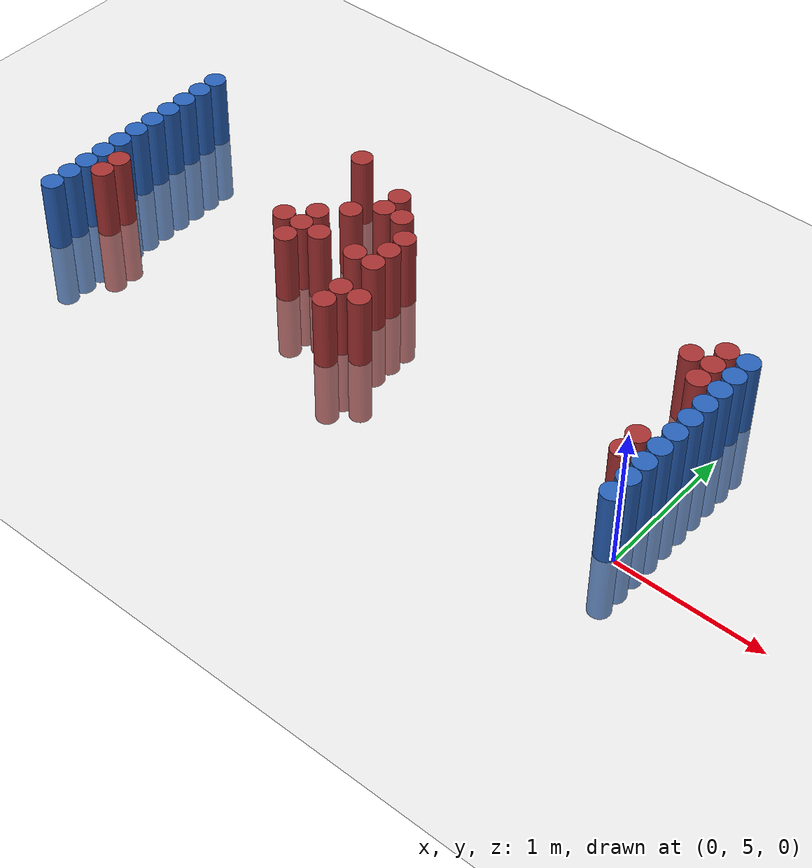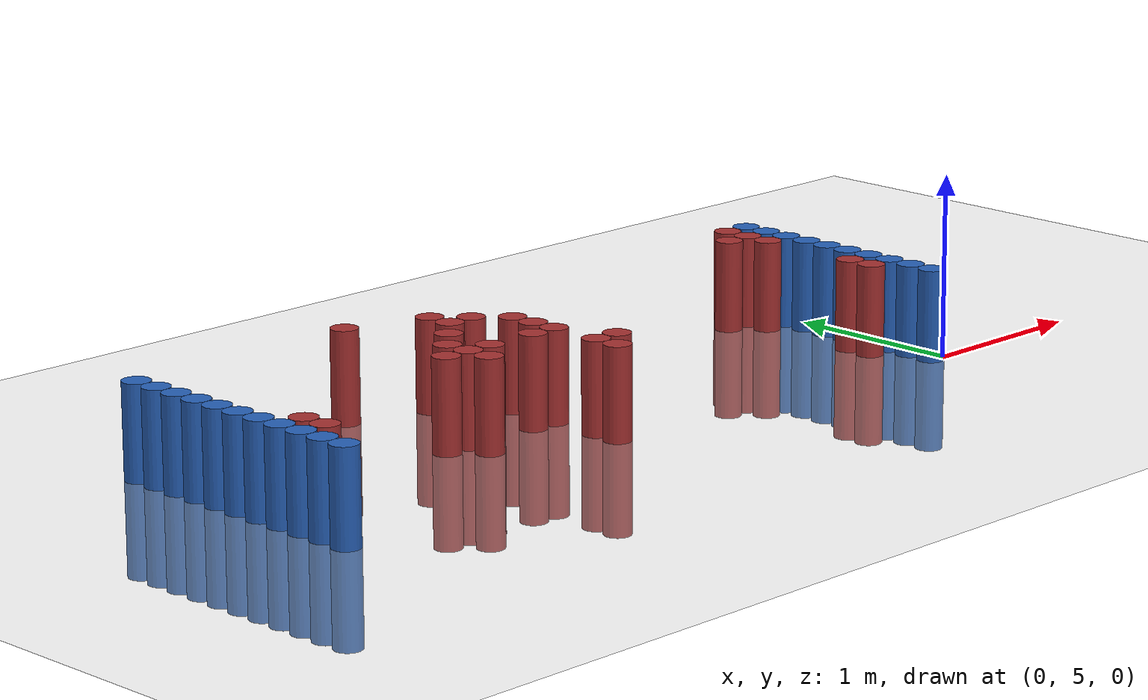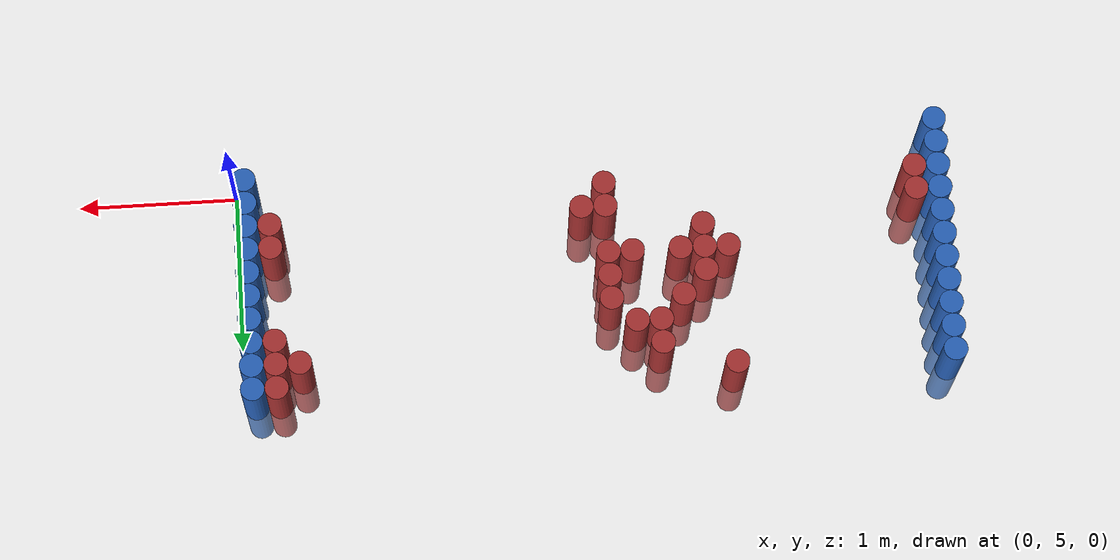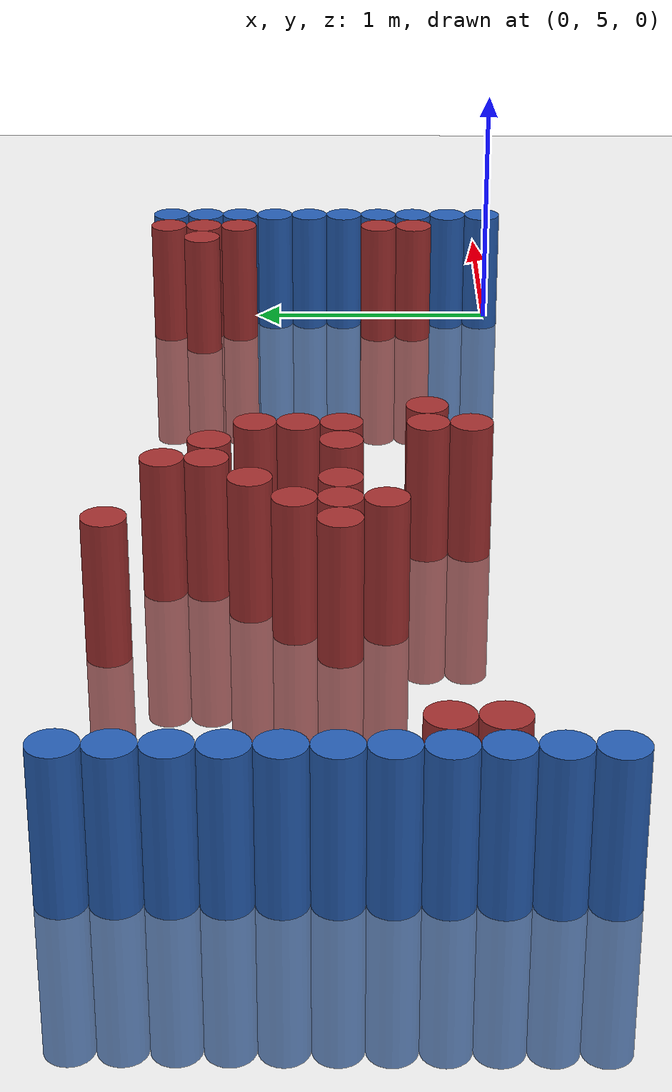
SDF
<sdf version="1.6">
 <world name="default">
  <model name="ground_plane">
   <static>1</static>
   <link name="link">
    <collision name="collision">
     <geometry><plane><normal>0 0 1</normal><size>100 100</size></plane></geometry>
     <surface><friction><ode><mu>100</mu><mu2>50</mu2></ode></friction></surface>
    </collision>
    <visual name="visual">
     <cast_shadows>0</cast_shadows>
     <geometry><plane><normal>0 0 1</normal><size>100 100</size></plane></geometry>
     <material>
      <script><uri>file://media/materials/scripts/gazebo.material</uri><name>Gazebo/Grey</name></script>
     </material>
    </visual>
   </link>
  </model>
  <model name="unit_cylinder_93">
   <static>1</static>
   <pose>-4.425000 4.875000 0.000000 0.000000 0.000000 0.000000</pose>
   <link name="link">
    <inertial>
     <mass>1</mass>
     <inertia><ixx>0.145833</ixx><ixy>0</ixy><ixz>0</ixz><iyy>0.145833</iyy><iyz>0</iyz><izz>0.125</izz></inertia>
    </inertial>
    <collision name="collision">
     <geometry><cylinder><radius>0.075000</radius><length>1</length></cylinder></geometry>
    </collision>
    <visual name="visual">
     <geometry><cylinder><radius>0.075000</radius><length>1</length></cylinder></geometry>
     <material>
      <ambient>0.152000 0.379000 0.720000 1</ambient>
      <diffuse>0.152000 0.379000 0.720000 1</diffuse>
     </material>
     <material>
      <script><name>Gazebo/Grey</name><uri>file://media/materials/scripts/gazebo.material</uri></script>
     </material>
    </visual>
   </link>
  </model>
  <model name="unit_cylinder_94">
   <static>1</static>
   <pose>-0.075000 5.025000 0.000000 0.000000 0.000000 0.000000</pose>
   <link name="link">
    <inertial>
     <mass>1</mass>
     <inertia><ixx>0.145833</ixx><ixy>0</ixy><ixz>0</ixz><iyy>0.145833</iyy><iyz>0</iyz><izz>0.125</izz></inertia>
    </inertial>
    <collision name="collision">
     <geometry><cylinder><radius>0.075000</radius><length>1</length></cylinder></geometry>
    </collision>
    <visual name="visual">
     <geometry><cylinder><radius>0.075000</radius><length>1</length></cylinder></geometry>
     <material>
      <ambient>0.152000 0.379000 0.720000 1</ambient>
      <diffuse>0.152000 0.379000 0.720000 1</diffuse>
     </material>
     <material>
      <script><name>Gazebo/Grey</name><uri>file://media/materials/scripts/gazebo.material</uri></script>
     </material>
    </visual>
   </link>
  </model>
  <model name="unit_cylinder_95">
   <static>1</static>
   <pose>-4.425000 5.025000 0.000000 0.000000 0.000000 0.000000</pose>
   <link name="link">
    <inertial>
     <mass>1</mass>
     <inertia><ixx>0.145833</ixx><ixy>0</ixy><ixz>0</ixz><iyy>0.145833</iyy><iyz>0</iyz><izz>0.125</izz></inertia>
    </inertial>
    <collision name="collision">
     <geometry><cylinder><radius>0.075000</radius><length>1</length></cylinder></geometry>
    </collision>
    <visual name="visual">
     <geometry><cylinder><radius>0.075000</radius><length>1</length></cylinder></geometry>
     <material>
      <ambient>0.152000 0.379000 0.720000 1</ambient>
      <diffuse>0.152000 0.379000 0.720000 1</diffuse>
     </material>
     <material>
      <script><name>Gazebo/Grey</name><uri>file://media/materials/scripts/gazebo.material</uri></script>
     </material>
    </visual>
   </link>
  </model>
  <model name="unit_cylinder_96">
   <static>1</static>
   <pose>-4.425000 5.175000 0.000000 0.000000 0.000000 0.000000</pose>
   <link name="link">
    <inertial>
     <mass>1</mass>
     <inertia><ixx>0.145833</ixx><ixy>0</ixy><ixz>0</ixz><iyy>0.145833</iyy><iyz>0</iyz><izz>0.125</izz></inertia>
    </inertial>
    <collision name="collision">
     <geometry><cylinder><radius>0.075000</radius><length>1</length></cylinder></geometry>
    </collision>
    <visual name="visual">
     <geometry><cylinder><radius>0.075000</radius><length>1</length></cylinder></geometry>
     <material>
      <ambient>0.152000 0.379000 0.720000 1</ambient>
      <diffuse>0.152000 0.379000 0.720000 1</diffuse>
     </material>
     <material>
      <script><name>Gazebo/Grey</name><uri>file://media/materials/scripts/gazebo.material</uri></script>
     </material>
    </visual>
   </link>
  </model>
  <model name="unit_cylinder_97">
   <static>1</static>
   <pose>-4.425000 5.325000 0.000000 0.000000 0.000000 0.000000</pose>
   <link name="link">
    <inertial>
     <mass>1</mass>
     <inertia><ixx>0.145833</ixx><ixy>0</ixy><ixz>0</ixz><iyy>0.145833</iyy><iyz>0</iyz><izz>0.125</izz></inertia>
    </inertial>
    <collision name="collision">
     <geometry><cylinder><radius>0.075000</radius><length>1</length></cylinder></geometry>
    </collision>
    <visual name="visual">
     <geometry><cylinder><radius>0.075000</radius><length>1</length></cylinder></geometry>
     <material>
      <ambient>0.152000 0.379000 0.720000 1</ambient>
      <diffuse>0.152000 0.379000 0.720000 1</diffuse>
     </material>
     <material>
      <script><name>Gazebo/Grey</name><uri>file://media/materials/scripts/gazebo.material</uri></script>
     </material>
    </visual>
   </link>
  </model>
  <model name="unit_cylinder_98">
   <static>1</static>
   <pose>-4.425000 5.475000 0.000000 0.000000 0.000000 0.000000</pose>
   <link name="link">
    <inertial>
     <mass>1</mass>
     <inertia><ixx>0.145833</ixx><ixy>0</ixy><ixz>0</ixz><iyy>0.145833</iyy><iyz>0</iyz><izz>0.125</izz></inertia>
    </inertial>
    <collision name="collision">
     <geometry><cylinder><radius>0.075000</radius><length>1</length></cylinder></geometry>
    </collision>
    <visual name="visual">
     <geometry><cylinder><radius>0.075000</radius><length>1</length></cylinder></geometry>
     <material>
      <ambient>0.152000 0.379000 0.720000 1</ambient>
      <diffuse>0.152000 0.379000 0.720000 1</diffuse>
     </material>
     <material>
      <script><name>Gazebo/Grey</name><uri>file://media/materials/scripts/gazebo.material</uri></script>
     </material>
    </visual>
   </link>
  </model>
  <model name="unit_cylinder_99">
   <static>1</static>
   <pose>-4.425000 5.625000 0.000000 0.000000 0.000000 0.000000</pose>
   <link name="link">
    <inertial>
     <mass>1</mass>
     <inertia><ixx>0.145833</ixx><ixy>0</ixy><ixz>0</ixz><iyy>0.145833</iyy><iyz>0</iyz><izz>0.125</izz></inertia>
    </inertial>
    <collision name="collision">
     <geometry><cylinder><radius>0.075000</radius><length>1</length></cylinder></geometry>
    </collision>
    <visual name="visual">
     <geometry><cylinder><radius>0.075000</radius><length>1</length></cylinder></geometry>
     <material>
      <ambient>0.152000 0.379000 0.720000 1</ambient>
      <diffuse>0.152000 0.379000 0.720000 1</diffuse>
     </material>
     <material>
      <script><name>Gazebo/Grey</name><uri>file://media/materials/scripts/gazebo.material</uri></script>
     </material>
    </visual>
   </link>
  </model>
  <model name="unit_cylinder_100">
   <static>1</static>
   <pose>-4.425000 5.775000 0.000000 0.000000 0.000000 0.000000</pose>
   <link name="link">
    <inertial>
     <mass>1</mass>
     <inertia><ixx>0.145833</ixx><ixy>0</ixy><ixz>0</ixz><iyy>0.145833</iyy><iyz>0</iyz><izz>0.125</izz></inertia>
    </inertial>
    <collision name="collision">
     <geometry><cylinder><radius>0.075000</radius><length>1</length></cylinder></geometry>
    </collision>
    <visual name="visual">
     <geometry><cylinder><radius>0.075000</radius><length>1</length></cylinder></geometry>
     <material>
      <ambient>0.152000 0.379000 0.720000 1</ambient>
      <diffuse>0.152000 0.379000 0.720000 1</diffuse>
     </material>
     <material>
      <script><name>Gazebo/Grey</name><uri>file://media/materials/scripts/gazebo.material</uri></script>
     </material>
    </visual>
   </link>
  </model>
  <model name="unit_cylinder_101">
   <static>1</static>
   <pose>-4.425000 5.925000 0.000000 0.000000 0.000000 0.000000</pose>
   <link name="link">
    <inertial>
     <mass>1</mass>
     <inertia><ixx>0.145833</ixx><ixy>0</ixy><ixz>0</ixz><iyy>0.145833</iyy><iyz>0</iyz><izz>0.125</izz></inertia>
    </inertial>
    <collision name="collision">
     <geometry><cylinder><radius>0.075000</radius><length>1</length></cylinder></geometry>
    </collision>
    <visual name="visual">
     <geometry><cylinder><radius>0.075000</radius><length>1</length></cylinder></geometry>
     <material>
      <ambient>0.152000 0.379000 0.720000 1</ambient>
      <diffuse>0.152000 0.379000 0.720000 1</diffuse>
     </material>
     <material>
      <script><name>Gazebo/Grey</name><uri>file://media/materials/scripts/gazebo.material</uri></script>
     </material>
    </visual>
   </link>
  </model>
  <model name="unit_cylinder_102">
   <static>1</static>
   <pose>-4.425000 6.075000 0.000000 0.000000 0.000000 0.000000</pose>
   <link name="link">
    <inertial>
     <mass>1</mass>
     <inertia><ixx>0.145833</ixx><ixy>0</ixy><ixz>0</ixz><iyy>0.145833</iyy><iyz>0</iyz><izz>0.125</izz></inertia>
    </inertial>
    <collision name="collision">
     <geometry><cylinder><radius>0.075000</radius><length>1</length></cylinder></geometry>
    </collision>
    <visual name="visual">
     <geometry><cylinder><radius>0.075000</radius><length>1</length></cylinder></geometry>
     <material>
      <ambient>0.152000 0.379000 0.720000 1</ambient>
      <diffuse>0.152000 0.379000 0.720000 1</diffuse>
     </material>
     <material>
      <script><name>Gazebo/Grey</name><uri>file://media/materials/scripts/gazebo.material</uri></script>
     </material>
    </visual>
   </link>
  </model>
  <model name="unit_cylinder_103">
   <static>1</static>
   <pose>-4.425000 6.225000 0.000000 0.000000 0.000000 0.000000</pose>
   <link name="link">
    <inertial>
     <mass>1</mass>
     <inertia><ixx>0.145833</ixx><ixy>0</ixy><ixz>0</ixz><iyy>0.145833</iyy><iyz>0</iyz><izz>0.125</izz></inertia>
    </inertial>
    <collision name="collision">
     <geometry><cylinder><radius>0.075000</radius><length>1</length></cylinder></geometry>
    </collision>
    <visual name="visual">
     <geometry><cylinder><radius>0.075000</radius><length>1</length></cylinder></geometry>
     <material>
      <ambient>0.152000 0.379000 0.720000 1</ambient>
      <diffuse>0.152000 0.379000 0.720000 1</diffuse>
     </material>
     <material>
      <script><name>Gazebo/Grey</name><uri>file://media/materials/scripts/gazebo.material</uri></script>
     </material>
    </visual>
   </link>
  </model>
  <model name="unit_cylinder_104">
   <static>1</static>
   <pose>-4.425000 6.375000 0.000000 0.000000 0.000000 0.000000</pose>
   <link name="link">
    <inertial>
     <mass>1</mass>
     <inertia><ixx>0.145833</ixx><ixy>0</ixy><ixz>0</ixz><iyy>0.145833</iyy><iyz>0</iyz><izz>0.125</izz></inertia>
    </inertial>
    <collision name="collision">
     <geometry><cylinder><radius>0.075000</radius><length>1</length></cylinder></geometry>
    </collision>
    <visual name="visual">
     <geometry><cylinder><radius>0.075000</radius><length>1</length></cylinder></geometry>
     <material>
      <ambient>0.152000 0.379000 0.720000 1</ambient>
      <diffuse>0.152000 0.379000 0.720000 1</diffuse>
     </material>
     <material>
      <script><name>Gazebo/Grey</name><uri>file://media/materials/scripts/gazebo.material</uri></script>
     </material>
    </visual>
   </link>
  </model>
  <model name="unit_cylinder_126">
   <static>1</static>
   <pose>-4.275000 5.175000 0.000000 0.000000 0.000000 0.000000</pose>
   <link name="link">
    <inertial>
     <mass>1</mass>
     <inertia><ixx>0.145833</ixx><ixy>0</ixy><ixz>0</ixz><iyy>0.145833</iyy><iyz>0</iyz><izz>0.125</izz></inertia>
    </inertial>
    <collision name="collision">
     <geometry><cylinder><radius>0.075000</radius><length>1</length></cylinder></geometry>
    </collision>
    <visual name="visual">
     <geometry><cylinder><radius>0.075000</radius><length>1</length></cylinder></geometry>
     <material>
      <ambient>0.648000 0.192000 0.192000 1</ambient>
      <diffuse>0.648000 0.192000 0.192000 1</diffuse>
     </material>
     <material>
      <script><name>Gazebo/Grey</name><uri>file://media/materials/scripts/gazebo.material</uri></script>
     </material>
    </visual>
   </link>
  </model>
  <model name="unit_cylinder_127">
   <static>1</static>
   <pose>-4.275000 5.325000 0.000000 0.000000 0.000000 0.000000</pose>
   <link name="link">
    <inertial>
     <mass>1</mass>
     <inertia><ixx>0.145833</ixx><ixy>0</ixy><ixz>0</ixz><iyy>0.145833</iyy><iyz>0</iyz><izz>0.125</izz></inertia>
    </inertial>
    <collision name="collision">
     <geometry><cylinder><radius>0.075000</radius><length>1</length></cylinder></geometry>
    </collision>
    <visual name="visual">
     <geometry><cylinder><radius>0.075000</radius><length>1</length></cylinder></geometry>
     <material>
      <ambient>0.648000 0.192000 0.192000 1</ambient>
      <diffuse>0.648000 0.192000 0.192000 1</diffuse>
     </material>
     <material>
      <script><name>Gazebo/Grey</name><uri>file://media/materials/scripts/gazebo.material</uri></script>
     </material>
    </visual>
   </link>
  </model>
  <model name="unit_cylinder_149">
   <static>1</static>
   <pose>-3.075000 5.625000 0.000000 0.000000 0.000000 0.000000</pose>
   <link name="link">
    <inertial>
     <mass>1</mass>
     <inertia><ixx>0.145833</ixx><ixy>0</ixy><ixz>0</ixz><iyy>0.145833</iyy><iyz>0</iyz><izz>0.125</izz></inertia>
    </inertial>
    <collision name="collision">
     <geometry><cylinder><radius>0.075000</radius><length>1</length></cylinder></geometry>
    </collision>
    <visual name="visual">
     <geometry><cylinder><radius>0.075000</radius><length>1</length></cylinder></geometry>
     <material>
      <ambient>0.648000 0.192000 0.192000 1</ambient>
      <diffuse>0.648000 0.192000 0.192000 1</diffuse>
     </material>
     <material>
      <script><name>Gazebo/Grey</name><uri>file://media/materials/scripts/gazebo.material</uri></script>
     </material>
    </visual>
   </link>
  </model>
  <model name="unit_cylinder_150">
   <static>1</static>
   <pose>-3.075000 6.375000 0.000000 0.000000 0.000000 0.000000</pose>
   <link name="link">
    <inertial>
     <mass>1</mass>
     <inertia><ixx>0.145833</ixx><ixy>0</ixy><ixz>0</ixz><iyy>0.145833</iyy><iyz>0</iyz><izz>0.125</izz></inertia>
    </inertial>
    <collision name="collision">
     <geometry><cylinder><radius>0.075000</radius><length>1</length></cylinder></geometry>
    </collision>
    <visual name="visual">
     <geometry><cylinder><radius>0.075000</radius><length>1</length></cylinder></geometry>
     <material>
      <ambient>0.648000 0.192000 0.192000 1</ambient>
      <diffuse>0.648000 0.192000 0.192000 1</diffuse>
     </material>
     <material>
      <script><name>Gazebo/Grey</name><uri>file://media/materials/scripts/gazebo.material</uri></script>
     </material>
    </visual>
   </link>
  </model>
  <model name="unit_cylinder_152">
   <static>1</static>
   <pose>-2.925000 5.475000 0.000000 0.000000 0.000000 0.000000</pose>
   <link name="link">
    <inertial>
     <mass>1</mass>
     <inertia><ixx>0.145833</ixx><ixy>0</ixy><ixz>0</ixz><iyy>0.145833</iyy><iyz>0</iyz><izz>0.125</izz></inertia>
    </inertial>
    <collision name="collision">
     <geometry><cylinder><radius>0.075000</radius><length>1</length></cylinder></geometry>
    </collision>
    <visual name="visual">
     <geometry><cylinder><radius>0.075000</radius><length>1</length></cylinder></geometry>
     <material>
      <ambient>0.648000 0.192000 0.192000 1</ambient>
      <diffuse>0.648000 0.192000 0.192000 1</diffuse>
     </material>
     <material>
      <script><name>Gazebo/Grey</name><uri>file://media/materials/scripts/gazebo.material</uri></script>
     </material>
    </visual>
   </link>
  </model>
  <model name="unit_cylinder_153">
   <static>1</static>
   <pose>-2.925000 5.625000 0.000000 0.000000 0.000000 0.000000</pose>
   <link name="link">
    <inertial>
     <mass>1</mass>
     <inertia><ixx>0.145833</ixx><ixy>0</ixy><ixz>0</ixz><iyy>0.145833</iyy><iyz>0</iyz><izz>0.125</izz></inertia>
    </inertial>
    <collision name="collision">
     <geometry><cylinder><radius>0.075000</radius><length>1</length></cylinder></geometry>
    </collision>
    <visual name="visual">
     <geometry><cylinder><radius>0.075000</radius><length>1</length></cylinder></geometry>
     <material>
      <ambient>0.648000 0.192000 0.192000 1</ambient>
      <diffuse>0.648000 0.192000 0.192000 1</diffuse>
     </material>
     <material>
      <script><name>Gazebo/Grey</name><uri>file://media/materials/scripts/gazebo.material</uri></script>
     </material>
    </visual>
   </link>
  </model>
  <model name="unit_cylinder_154">
   <static>1</static>
   <pose>-2.925000 5.775000 0.000000 0.000000 0.000000 0.000000</pose>
   <link name="link">
    <inertial>
     <mass>1</mass>
     <inertia><ixx>0.145833</ixx><ixy>0</ixy><ixz>0</ixz><iyy>0.145833</iyy><iyz>0</iyz><izz>0.125</izz></inertia>
    </inertial>
    <collision name="collision">
     <geometry><cylinder><radius>0.075000</radius><length>1</length></cylinder></geometry>
    </collision>
    <visual name="visual">
     <geometry><cylinder><radius>0.075000</radius><length>1</length></cylinder></geometry>
     <material>
      <ambient>0.648000 0.192000 0.192000 1</ambient>
      <diffuse>0.648000 0.192000 0.192000 1</diffuse>
     </material>
     <material>
      <script><name>Gazebo/Grey</name><uri>file://media/materials/scripts/gazebo.material</uri></script>
     </material>
    </visual>
   </link>
  </model>
  <model name="unit_cylinder_157">
   <static>1</static>
   <pose>-2.775000 5.625000 0.000000 0.000000 0.000000 0.000000</pose>
   <link name="link">
    <inertial>
     <mass>1</mass>
     <inertia><ixx>0.145833</ixx><ixy>0</ixy><ixz>0</ixz><iyy>0.145833</iyy><iyz>0</iyz><izz>0.125</izz></inertia>
    </inertial>
    <collision name="collision">
     <geometry><cylinder><radius>0.075000</radius><length>1</length></cylinder></geometry>
    </collision>
    <visual name="visual">
     <geometry><cylinder><radius>0.075000</radius><length>1</length></cylinder></geometry>
     <material>
      <ambient>0.648000 0.192000 0.192000 1</ambient>
      <diffuse>0.648000 0.192000 0.192000 1</diffuse>
     </material>
     <material>
      <script><name>Gazebo/Grey</name><uri>file://media/materials/scripts/gazebo.material</uri></script>
     </material>
    </visual>
   </link>
  </model>
  <model name="unit_cylinder_158">
   <static>1</static>
   <pose>-2.775000 5.925000 0.000000 0.000000 0.000000 0.000000</pose>
   <link name="link">
    <inertial>
     <mass>1</mass>
     <inertia><ixx>0.145833</ixx><ixy>0</ixy><ixz>0</ixz><iyy>0.145833</iyy><iyz>0</iyz><izz>0.125</izz></inertia>
    </inertial>
    <collision name="collision">
     <geometry><cylinder><radius>0.075000</radius><length>1</length></cylinder></geometry>
    </collision>
    <visual name="visual">
     <geometry><cylinder><radius>0.075000</radius><length>1</length></cylinder></geometry>
     <material>
      <ambient>0.648000 0.192000 0.192000 1</ambient>
      <diffuse>0.648000 0.192000 0.192000 1</diffuse>
     </material>
     <material>
      <script><name>Gazebo/Grey</name><uri>file://media/materials/scripts/gazebo.material</uri></script>
     </material>
    </visual>
   </link>
  </model>
  <model name="unit_cylinder_163">
   <static>1</static>
   <pose>-2.625000 6.075000 0.000000 0.000000 0.000000 0.000000</pose>
   <link name="link">
    <inertial>
     <mass>1</mass>
     <inertia><ixx>0.145833</ixx><ixy>0</ixy><ixz>0</ixz><iyy>0.145833</iyy><iyz>0</iyz><izz>0.125</izz></inertia>
    </inertial>
    <collision name="collision">
     <geometry><cylinder><radius>0.075000</radius><length>1</length></cylinder></geometry>
    </collision>
    <visual name="visual">
     <geometry><cylinder><radius>0.075000</radius><length>1</length></cylinder></geometry>
     <material>
      <ambient>0.648000 0.192000 0.192000 1</ambient>
      <diffuse>0.648000 0.192000 0.192000 1</diffuse>
     </material>
     <material>
      <script><name>Gazebo/Grey</name><uri>file://media/materials/scripts/gazebo.material</uri></script>
     </material>
    </visual>
   </link>
  </model>
  <model name="unit_cylinder_164">
   <static>1</static>
   <pose>-2.625000 6.225000 0.000000 0.000000 0.000000 0.000000</pose>
   <link name="link">
    <inertial>
     <mass>1</mass>
     <inertia><ixx>0.145833</ixx><ixy>0</ixy><ixz>0</ixz><iyy>0.145833</iyy><iyz>0</iyz><izz>0.125</izz></inertia>
    </inertial>
    <collision name="collision">
     <geometry><cylinder><radius>0.075000</radius><length>1</length></cylinder></geometry>
    </collision>
    <visual name="visual">
     <geometry><cylinder><radius>0.075000</radius><length>1</length></cylinder></geometry>
     <material>
      <ambient>0.648000 0.192000 0.192000 1</ambient>
      <diffuse>0.648000 0.192000 0.192000 1</diffuse>
     </material>
     <material>
      <script><name>Gazebo/Grey</name><uri>file://media/materials/scripts/gazebo.material</uri></script>
     </material>
    </visual>
   </link>
  </model>
  <model name="unit_cylinder_168">
   <static>1</static>
   <pose>-2.475000 5.625000 0.000000 0.000000 0.000000 0.000000</pose>
   <link name="link">
    <inertial>
     <mass>1</mass>
     <inertia><ixx>0.145833</ixx><ixy>0</ixy><ixz>0</ixz><iyy>0.145833</iyy><iyz>0</iyz><izz>0.125</izz></inertia>
    </inertial>
    <collision name="collision">
     <geometry><cylinder><radius>0.075000</radius><length>1</length></cylinder></geometry>
    </collision>
    <visual name="visual">
     <geometry><cylinder><radius>0.075000</radius><length>1</length></cylinder></geometry>
     <material>
      <ambient>0.648000 0.192000 0.192000 1</ambient>
      <diffuse>0.648000 0.192000 0.192000 1</diffuse>
     </material>
     <material>
      <script><name>Gazebo/Grey</name><uri>file://media/materials/scripts/gazebo.material</uri></script>
     </material>
    </visual>
   </link>
  </model>
  <model name="unit_cylinder_169">
   <static>1</static>
   <pose>-2.475000 6.075000 0.000000 0.000000 0.000000 0.000000</pose>
   <link name="link">
    <inertial>
     <mass>1</mass>
     <inertia><ixx>0.145833</ixx><ixy>0</ixy><ixz>0</ixz><iyy>0.145833</iyy><iyz>0</iyz><izz>0.125</izz></inertia>
    </inertial>
    <collision name="collision">
     <geometry><cylinder><radius>0.075000</radius><length>1</length></cylinder></geometry>
    </collision>
    <visual name="visual">
     <geometry><cylinder><radius>0.075000</radius><length>1</length></cylinder></geometry>
     <material>
      <ambient>0.648000 0.192000 0.192000 1</ambient>
      <diffuse>0.648000 0.192000 0.192000 1</diffuse>
     </material>
     <material>
      <script><name>Gazebo/Grey</name><uri>file://media/materials/scripts/gazebo.material</uri></script>
     </material>
    </visual>
   </link>
  </model>
  <model name="unit_cylinder_174">
   <static>1</static>
   <pose>-2.325000 5.175000 0.000000 0.000000 0.000000 0.000000</pose>
   <link name="link">
    <inertial>
     <mass>1</mass>
     <inertia><ixx>0.145833</ixx><ixy>0</ixy><ixz>0</ixz><iyy>0.145833</iyy><iyz>0</iyz><izz>0.125</izz></inertia>
    </inertial>
    <collision name="collision">
     <geometry><cylinder><radius>0.075000</radius><length>1</length></cylinder></geometry>
    </collision>
    <visual name="visual">
     <geometry><cylinder><radius>0.075000</radius><length>1</length></cylinder></geometry>
     <material>
      <ambient>0.648000 0.192000 0.192000 1</ambient>
      <diffuse>0.648000 0.192000 0.192000 1</diffuse>
     </material>
     <material>
      <script><name>Gazebo/Grey</name><uri>file://media/materials/scripts/gazebo.material</uri></script>
     </material>
    </visual>
   </link>
  </model>
  <model name="unit_cylinder_175">
   <static>1</static>
   <pose>-2.325000 5.325000 0.000000 0.000000 0.000000 0.000000</pose>
   <link name="link">
    <inertial>
     <mass>1</mass>
     <inertia><ixx>0.145833</ixx><ixy>0</ixy><ixz>0</ixz><iyy>0.145833</iyy><iyz>0</iyz><izz>0.125</izz></inertia>
    </inertial>
    <collision name="collision">
     <geometry><cylinder><radius>0.075000</radius><length>1</length></cylinder></geometry>
    </collision>
    <visual name="visual">
     <geometry><cylinder><radius>0.075000</radius><length>1</length></cylinder></geometry>
     <material>
      <ambient>0.648000 0.192000 0.192000 1</ambient>
      <diffuse>0.648000 0.192000 0.192000 1</diffuse>
     </material>
     <material>
      <script><name>Gazebo/Grey</name><uri>file://media/materials/scripts/gazebo.material</uri></script>
     </material>
    </visual>
   </link>
  </model>
  <model name="unit_cylinder_176">
   <static>1</static>
   <pose>-2.325000 5.625000 0.000000 0.000000 0.000000 0.000000</pose>
   <link name="link">
    <inertial>
     <mass>1</mass>
     <inertia><ixx>0.145833</ixx><ixy>0</ixy><ixz>0</ixz><iyy>0.145833</iyy><iyz>0</iyz><izz>0.125</izz></inertia>
    </inertial>
    <collision name="collision">
     <geometry><cylinder><radius>0.075000</radius><length>1</length></cylinder></geometry>
    </collision>
    <visual name="visual">
     <geometry><cylinder><radius>0.075000</radius><length>1</length></cylinder></geometry>
     <material>
      <ambient>0.648000 0.192000 0.192000 1</ambient>
      <diffuse>0.648000 0.192000 0.192000 1</diffuse>
     </material>
     <material>
      <script><name>Gazebo/Grey</name><uri>file://media/materials/scripts/gazebo.material</uri></script>
     </material>
    </visual>
   </link>
  </model>
  <model name="unit_cylinder_177">
   <static>1</static>
   <pose>-2.325000 5.775000 0.000000 0.000000 0.000000 0.000000</pose>
   <link name="link">
    <inertial>
     <mass>1</mass>
     <inertia><ixx>0.145833</ixx><ixy>0</ixy><ixz>0</ixz><iyy>0.145833</iyy><iyz>0</iyz><izz>0.125</izz></inertia>
    </inertial>
    <collision name="collision">
     <geometry><cylinder><radius>0.075000</radius><length>1</length></cylinder></geometry>
    </collision>
    <visual name="visual">
     <geometry><cylinder><radius>0.075000</radius><length>1</length></cylinder></geometry>
     <material>
      <ambient>0.648000 0.192000 0.192000 1</ambient>
      <diffuse>0.648000 0.192000 0.192000 1</diffuse>
     </material>
     <material>
      <script><name>Gazebo/Grey</name><uri>file://media/materials/scripts/gazebo.material</uri></script>
     </material>
    </visual>
   </link>
  </model>
  <model name="unit_cylinder_178">
   <static>1</static>
   <pose>-2.325000 5.925000 0.000000 0.000000 0.000000 0.000000</pose>
   <link name="link">
    <inertial>
     <mass>1</mass>
     <inertia><ixx>0.145833</ixx><ixy>0</ixy><ixz>0</ixz><iyy>0.145833</iyy><iyz>0</iyz><izz>0.125</izz></inertia>
    </inertial>
    <collision name="collision">
     <geometry><cylinder><radius>0.075000</radius><length>1</length></cylinder></geometry>
    </collision>
    <visual name="visual">
     <geometry><cylinder><radius>0.075000</radius><length>1</length></cylinder></geometry>
     <material>
      <ambient>0.648000 0.192000 0.192000 1</ambient>
      <diffuse>0.648000 0.192000 0.192000 1</diffuse>
     </material>
     <material>
      <script><name>Gazebo/Grey</name><uri>file://media/materials/scripts/gazebo.material</uri></script>
     </material>
    </visual>
   </link>
  </model>
  <model name="unit_cylinder_184">
   <static>1</static>
   <pose>-2.175000 5.325000 0.000000 0.000000 0.000000 0.000000</pose>
   <link name="link">
    <inertial>
     <mass>1</mass>
     <inertia><ixx>0.145833</ixx><ixy>0</ixy><ixz>0</ixz><iyy>0.145833</iyy><iyz>0</iyz><izz>0.125</izz></inertia>
    </inertial>
    <collision name="collision">
     <geometry><cylinder><radius>0.075000</radius><length>1</length></cylinder></geometry>
    </collision>
    <visual name="visual">
     <geometry><cylinder><radius>0.075000</radius><length>1</length></cylinder></geometry>
     <material>
      <ambient>0.648000 0.192000 0.192000 1</ambient>
      <diffuse>0.648000 0.192000 0.192000 1</diffuse>
     </material>
     <material>
      <script><name>Gazebo/Grey</name><uri>file://media/materials/scripts/gazebo.material</uri></script>
     </material>
    </visual>
   </link>
  </model>
  <model name="unit_cylinder_222">
   <static>1</static>
   <pose>-0.375000 6.225000 0.000000 0.000000 0.000000 0.000000</pose>
   <link name="link">
    <inertial>
     <mass>1</mass>
     <inertia><ixx>0.145833</ixx><ixy>0</ixy><ixz>0</ixz><iyy>0.145833</iyy><iyz>0</iyz><izz>0.125</izz></inertia>
    </inertial>
    <collision name="collision">
     <geometry><cylinder><radius>0.075000</radius><length>1</length></cylinder></geometry>
    </collision>
    <visual name="visual">
     <geometry><cylinder><radius>0.075000</radius><length>1</length></cylinder></geometry>
     <material>
      <ambient>0.648000 0.192000 0.192000 1</ambient>
      <diffuse>0.648000 0.192000 0.192000 1</diffuse>
     </material>
     <material>
      <script><name>Gazebo/Grey</name><uri>file://media/materials/scripts/gazebo.material</uri></script>
     </material>
    </visual>
   </link>
  </model>
  <model name="unit_cylinder_229">
   <static>1</static>
   <pose>-0.225000 5.325000 0.000000 0.000000 0.000000 0.000000</pose>
   <link name="link">
    <inertial>
     <mass>1</mass>
     <inertia><ixx>0.145833</ixx><ixy>0</ixy><ixz>0</ixz><iyy>0.145833</iyy><iyz>0</iyz><izz>0.125</izz></inertia>
    </inertial>
    <collision name="collision">
     <geometry><cylinder><radius>0.075000</radius><length>1</length></cylinder></geometry>
    </collision>
    <visual name="visual">
     <geometry><cylinder><radius>0.075000</radius><length>1</length></cylinder></geometry>
     <material>
      <ambient>0.648000 0.192000 0.192000 1</ambient>
      <diffuse>0.648000 0.192000 0.192000 1</diffuse>
     </material>
     <material>
      <script><name>Gazebo/Grey</name><uri>file://media/materials/scripts/gazebo.material</uri></script>
     </material>
    </visual>
   </link>
  </model>
  <model name="unit_cylinder_230">
   <static>1</static>
   <pose>-0.225000 5.475000 0.000000 0.000000 0.000000 0.000000</pose>
   <link name="link">
    <inertial>
     <mass>1</mass>
     <inertia><ixx>0.145833</ixx><ixy>0</ixy><ixz>0</ixz><iyy>0.145833</iyy><iyz>0</iyz><izz>0.125</izz></inertia>
    </inertial>
    <collision name="collision">
     <geometry><cylinder><radius>0.075000</radius><length>1</length></cylinder></geometry>
    </collision>
    <visual name="visual">
     <geometry><cylinder><radius>0.075000</radius><length>1</length></cylinder></geometry>
     <material>
      <ambient>0.648000 0.192000 0.192000 1</ambient>
      <diffuse>0.648000 0.192000 0.192000 1</diffuse>
     </material>
     <material>
      <script><name>Gazebo/Grey</name><uri>file://media/materials/scripts/gazebo.material</uri></script>
     </material>
    </visual>
   </link>
  </model>
  <model name="unit_cylinder_231">
   <static>1</static>
   <pose>-0.225000 6.075000 0.000000 0.000000 0.000000 0.000000</pose>
   <link name="link">
    <inertial>
     <mass>1</mass>
     <inertia><ixx>0.145833</ixx><ixy>0</ixy><ixz>0</ixz><iyy>0.145833</iyy><iyz>0</iyz><izz>0.125</izz></inertia>
    </inertial>
    <collision name="collision">
     <geometry><cylinder><radius>0.075000</radius><length>1</length></cylinder></geometry>
    </collision>
    <visual name="visual">
     <geometry><cylinder><radius>0.075000</radius><length>1</length></cylinder></geometry>
     <material>
      <ambient>0.648000 0.192000 0.192000 1</ambient>
      <diffuse>0.648000 0.192000 0.192000 1</diffuse>
     </material>
     <material>
      <script><name>Gazebo/Grey</name><uri>file://media/materials/scripts/gazebo.material</uri></script>
     </material>
    </visual>
   </link>
  </model>
  <model name="unit_cylinder_232">
   <static>1</static>
   <pose>-0.225000 6.225000 0.000000 0.000000 0.000000 0.000000</pose>
   <link name="link">
    <inertial>
     <mass>1</mass>
     <inertia><ixx>0.145833</ixx><ixy>0</ixy><ixz>0</ixz><iyy>0.145833</iyy><iyz>0</iyz><izz>0.125</izz></inertia>
    </inertial>
    <collision name="collision">
     <geometry><cylinder><radius>0.075000</radius><length>1</length></cylinder></geometry>
    </collision>
    <visual name="visual">
     <geometry><cylinder><radius>0.075000</radius><length>1</length></cylinder></geometry>
     <material>
      <ambient>0.648000 0.192000 0.192000 1</ambient>
      <diffuse>0.648000 0.192000 0.192000 1</diffuse>
     </material>
     <material>
      <script><name>Gazebo/Grey</name><uri>file://media/materials/scripts/gazebo.material</uri></script>
     </material>
    </visual>
   </link>
  </model>
  <model name="unit_cylinder_233">
   <static>1</static>
   <pose>-0.225000 6.375000 0.000000 0.000000 0.000000 0.000000</pose>
   <link name="link">
    <inertial>
     <mass>1</mass>
     <inertia><ixx>0.145833</ixx><ixy>0</ixy><ixz>0</ixz><iyy>0.145833</iyy><iyz>0</iyz><izz>0.125</izz></inertia>
    </inertial>
    <collision name="collision">
     <geometry><cylinder><radius>0.075000</radius><length>1</length></cylinder></geometry>
    </collision>
    <visual name="visual">
     <geometry><cylinder><radius>0.075000</radius><length>1</length></cylinder></geometry>
     <material>
      <ambient>0.648000 0.192000 0.192000 1</ambient>
      <diffuse>0.648000 0.192000 0.192000 1</diffuse>
     </material>
     <material>
      <script><name>Gazebo/Grey</name><uri>file://media/materials/scripts/gazebo.material</uri></script>
     </material>
    </visual>
   </link>
  </model>
  <model name="unit_cylinder_247">
   <static>1</static>
   <pose>-0.075000 5.175000 0.000000 0.000000 0.000000 0.000000</pose>
   <link name="link">
    <inertial>
     <mass>1</mass>
     <inertia><ixx>0.145833</ixx><ixy>0</ixy><ixz>0</ixz><iyy>0.145833</iyy><iyz>0</iyz><izz>0.125</izz></inertia>
    </inertial>
    <collision name="collision">
     <geometry><cylinder><radius>0.075000</radius><length>1</length></cylinder></geometry>
    </collision>
    <visual name="visual">
     <geometry><cylinder><radius>0.075000</radius><length>1</length></cylinder></geometry>
     <material>
      <ambient>0.152000 0.379000 0.720000 1</ambient>
      <diffuse>0.152000 0.379000 0.720000 1</diffuse>
     </material>
     <material>
      <script><name>Gazebo/Grey</name><uri>file://media/materials/scripts/gazebo.material</uri></script>
     </material>
    </visual>
   </link>
  </model>
  <model name="unit_cylinder_248">
   <static>1</static>
   <pose>-0.075000 5.325000 0.000000 0.000000 0.000000 0.000000</pose>
   <link name="link">
    <inertial>
     <mass>1</mass>
     <inertia><ixx>0.145833</ixx><ixy>0</ixy><ixz>0</ixz><iyy>0.145833</iyy><iyz>0</iyz><izz>0.125</izz></inertia>
    </inertial>
    <collision name="collision">
     <geometry><cylinder><radius>0.075000</radius><length>1</length></cylinder></geometry>
    </collision>
    <visual name="visual">
     <geometry><cylinder><radius>0.075000</radius><length>1</length></cylinder></geometry>
     <material>
      <ambient>0.152000 0.379000 0.720000 1</ambient>
      <diffuse>0.152000 0.379000 0.720000 1</diffuse>
     </material>
     <material>
      <script><name>Gazebo/Grey</name><uri>file://media/materials/scripts/gazebo.material</uri></script>
     </material>
    </visual>
   </link>
  </model>
  <model name="unit_cylinder_249">
   <static>1</static>
   <pose>-0.075000 5.475000 0.000000 0.000000 0.000000 0.000000</pose>
   <link name="link">
    <inertial>
     <mass>1</mass>
     <inertia><ixx>0.145833</ixx><ixy>0</ixy><ixz>0</ixz><iyy>0.145833</iyy><iyz>0</iyz><izz>0.125</izz></inertia>
    </inertial>
    <collision name="collision">
     <geometry><cylinder><radius>0.075000</radius><length>1</length></cylinder></geometry>
    </collision>
    <visual name="visual">
     <geometry><cylinder><radius>0.075000</radius><length>1</length></cylinder></geometry>
     <material>
      <ambient>0.152000 0.379000 0.720000 1</ambient>
      <diffuse>0.152000 0.379000 0.720000 1</diffuse>
     </material>
     <material>
      <script><name>Gazebo/Grey</name><uri>file://media/materials/scripts/gazebo.material</uri></script>
     </material>
    </visual>
   </link>
  </model>
  <model name="unit_cylinder_250">
   <static>1</static>
   <pose>-0.075000 5.625000 0.000000 0.000000 0.000000 0.000000</pose>
   <link name="link">
    <inertial>
     <mass>1</mass>
     <inertia><ixx>0.145833</ixx><ixy>0</ixy><ixz>0</ixz><iyy>0.145833</iyy><iyz>0</iyz><izz>0.125</izz></inertia>
    </inertial>
    <collision name="collision">
     <geometry><cylinder><radius>0.075000</radius><length>1</length></cylinder></geometry>
    </collision>
    <visual name="visual">
     <geometry><cylinder><radius>0.075000</radius><length>1</length></cylinder></geometry>
     <material>
      <ambient>0.152000 0.379000 0.720000 1</ambient>
      <diffuse>0.152000 0.379000 0.720000 1</diffuse>
     </material>
     <material>
      <script><name>Gazebo/Grey</name><uri>file://media/materials/scripts/gazebo.material</uri></script>
     </material>
    </visual>
   </link>
  </model>
  <model name="unit_cylinder_251">
   <static>1</static>
   <pose>-0.075000 5.775000 0.000000 0.000000 0.000000 0.000000</pose>
   <link name="link">
    <inertial>
     <mass>1</mass>
     <inertia><ixx>0.145833</ixx><ixy>0</ixy><ixz>0</ixz><iyy>0.145833</iyy><iyz>0</iyz><izz>0.125</izz></inertia>
    </inertial>
    <collision name="collision">
     <geometry><cylinder><radius>0.075000</radius><length>1</length></cylinder></geometry>
    </collision>
    <visual name="visual">
     <geometry><cylinder><radius>0.075000</radius><length>1</length></cylinder></geometry>
     <material>
      <ambient>0.152000 0.379000 0.720000 1</ambient>
      <diffuse>0.152000 0.379000 0.720000 1</diffuse>
     </material>
     <material>
      <script><name>Gazebo/Grey</name><uri>file://media/materials/scripts/gazebo.material</uri></script>
     </material>
    </visual>
   </link>
  </model>
  <model name="unit_cylinder_252">
   <static>1</static>
   <pose>-0.075000 5.925000 0.000000 0.000000 0.000000 0.000000</pose>
   <link name="link">
    <inertial>
     <mass>1</mass>
     <inertia><ixx>0.145833</ixx><ixy>0</ixy><ixz>0</ixz><iyy>0.145833</iyy><iyz>0</iyz><izz>0.125</izz></inertia>
    </inertial>
    <collision name="collision">
     <geometry><cylinder><radius>0.075000</radius><length>1</length></cylinder></geometry>
    </collision>
    <visual name="visual">
     <geometry><cylinder><radius>0.075000</radius><length>1</length></cylinder></geometry>
     <material>
      <ambient>0.152000 0.379000 0.720000 1</ambient>
      <diffuse>0.152000 0.379000 0.720000 1</diffuse>
     </material>
     <material>
      <script><name>Gazebo/Grey</name><uri>file://media/materials/scripts/gazebo.material</uri></script>
     </material>
    </visual>
   </link>
  </model>
  <model name="unit_cylinder_253">
   <static>1</static>
   <pose>-0.075000 6.075000 0.000000 0.000000 0.000000 0.000000</pose>
   <link name="link">
    <inertial>
     <mass>1</mass>
     <inertia><ixx>0.145833</ixx><ixy>0</ixy><ixz>0</ixz><iyy>0.145833</iyy><iyz>0</iyz><izz>0.125</izz></inertia>
    </inertial>
    <collision name="collision">
     <geometry><cylinder><radius>0.075000</radius><length>1</length></cylinder></geometry>
    </collision>
    <visual name="visual">
     <geometry><cylinder><radius>0.075000</radius><length>1</length></cylinder></geometry>
     <material>
      <ambient>0.152000 0.379000 0.720000 1</ambient>
      <diffuse>0.152000 0.379000 0.720000 1</diffuse>
     </material>
     <material>
      <script><name>Gazebo/Grey</name><uri>file://media/materials/scripts/gazebo.material</uri></script>
     </material>
    </visual>
   </link>
  </model>
  <model name="unit_cylinder_254">
   <static>1</static>
   <pose>-0.075000 6.225000 0.000000 0.000000 0.000000 0.000000</pose>
   <link name="link">
    <inertial>
     <mass>1</mass>
     <inertia><ixx>0.145833</ixx><ixy>0</ixy><ixz>0</ixz><iyy>0.145833</iyy><iyz>0</iyz><izz>0.125</izz></inertia>
    </inertial>
    <collision name="collision">
     <geometry><cylinder><radius>0.075000</radius><length>1</length></cylinder></geometry>
    </collision>
    <visual name="visual">
     <geometry><cylinder><radius>0.075000</radius><length>1</length></cylinder></geometry>
     <material>
      <ambient>0.152000 0.379000 0.720000 1</ambient>
      <diffuse>0.152000 0.379000 0.720000 1</diffuse>
     </material>
     <material>
      <script><name>Gazebo/Grey</name><uri>file://media/materials/scripts/gazebo.material</uri></script>
     </material>
    </visual>
   </link>
  </model>
  <model name="unit_cylinder_255">
   <static>1</static>
   <pose>-0.075000 6.375000 0.000000 0.000000 0.000000 0.000000</pose>
   <link name="link">
    <inertial>
     <mass>1</mass>
     <inertia><ixx>0.145833</ixx><ixy>0</ixy><ixz>0</ixz><iyy>0.145833</iyy><iyz>0</iyz><izz>0.125</izz></inertia>
    </inertial>
    <collision name="collision">
     <geometry><cylinder><radius>0.075000</radius><length>1</length></cylinder></geometry>
    </collision>
    <visual name="visual">
     <geometry><cylinder><radius>0.075000</radius><length>1</length></cylinder></geometry>
     <material>
      <ambient>0.152000 0.379000 0.720000 1</ambient>
      <diffuse>0.152000 0.379000 0.720000 1</diffuse>
     </material>
     <material>
      <script><name>Gazebo/Grey</name><uri>file://media/materials/scripts/gazebo.material</uri></script>
     </material>
    </visual>
   </link>
  </model>
 </world>
</sdf>
